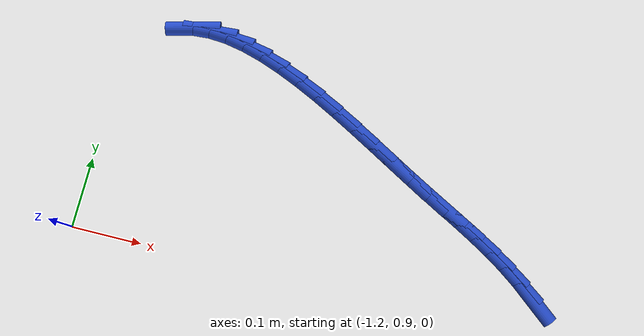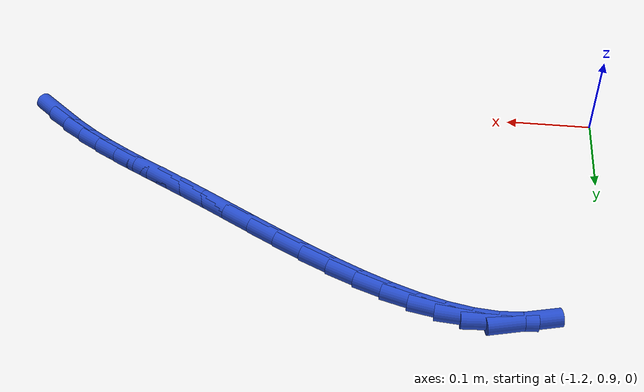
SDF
<sdf version="1.6">
 <world name="default">
  <model name="ground_plane">
   <static>1</static>
   <link name="link">
    <collision name="collision">
     <geometry><plane><normal>0 0 1</normal><size>100 100</size></plane></geometry>
     <surface><friction><ode><mu>100</mu><mu2>50</mu2></ode></friction></surface>
    </collision>
    <visual name="visual">
     <cast_shadows>0</cast_shadows>
     <geometry><plane><normal>0 0 1</normal><size>100 100</size></plane></geometry>
     <material>
      <script><uri>file://media/materials/scripts/gazebo.material</uri><name>Gazebo/WhiteGlow</name></script>
     </material>
    </visual>
   </link>
  </model>
  <model name="line">
   <link name="link_39">
    <pose>-0.5593524849204481 0.9558216433099324 0.01 0 1.57 -0.6936009312830728</pose>
    <collision name="collision">
     <geometry><cylinder><radius>0.01</radius><length>0.08</length></cylinder></geometry>
    </collision>
    <visual name="visual">
     <material>
      <script><name>Gazebo/Blue</name><uri>file://media/materials/scripts/gazebo.material</uri></script>
     </material>
     <geometry><cylinder><radius>0.01</radius><length>0.08</length></cylinder></geometry>
    </visual>
   </link>
   <link name="link_40">
    <pose>-0.5813056803094686 0.9740737053525046 0.01 0 1.57 -0.6342538687774706</pose>
    <collision name="collision">
     <geometry><cylinder><radius>0.01</radius><length>0.08</length></cylinder></geometry>
    </collision>
    <visual name="visual">
     <material>
      <script><name>Gazebo/Blue</name><uri>file://media/materials/scripts/gazebo.material</uri></script>
     </material>
     <geometry><cylinder><radius>0.01</radius><length>0.08</length></cylinder></geometry>
    </visual>
   </link>
   <link name="link_41">
    <pose>-0.6039971105438559 0.9907666628071685 0.01 0 1.57 -0.5806487105859068</pose>
    <collision name="collision">
     <geometry><cylinder><radius>0.01</radius><length>0.08</length></cylinder></geometry>
    </collision>
    <visual name="visual">
     <material>
      <script><name>Gazebo/Blue</name><uri>file://media/materials/scripts/gazebo.material</uri></script>
     </material>
     <geometry><cylinder><radius>0.01</radius><length>0.08</length></cylinder></geometry>
    </visual>
   </link>
   <link name="link_42">
    <pose>-0.62750336000404 1.0061890192864564 0.01 0 1.57 -0.5397523954169569</pose>
    <collision name="collision">
     <geometry><cylinder><radius>0.01</radius><length>0.08</length></cylinder></geometry>
    </collision>
    <visual name="visual">
     <material>
      <script><name>Gazebo/Blue</name><uri>file://media/materials/scripts/gazebo.material</uri></script>
     </material>
     <geometry><cylinder><radius>0.01</radius><length>0.08</length></cylinder></geometry>
    </visual>
   </link>
   <link name="link_43">
    <pose>-0.6518745633011798 1.0207896390268765 0.01 0 1.57 -0.5125165849322124</pose>
    <collision name="collision">
     <geometry><cylinder><radius>0.01</radius><length>0.08</length></cylinder></geometry>
    </collision>
    <visual name="visual">
     <material>
      <script><name>Gazebo/Blue</name><uri>file://media/materials/scripts/gazebo.material</uri></script>
     </material>
     <geometry><cylinder><radius>0.01</radius><length>0.08</length></cylinder></geometry>
    </visual>
   </link>
   <link name="link_44">
    <pose>-0.6771608514583765 1.0350174080187409 0.01 0 1.57 -0.49890042588356615</pose>
    <collision name="collision">
     <geometry><cylinder><radius>0.01</radius><length>0.08</length></cylinder></geometry>
    </collision>
    <visual name="visual">
     <material>
      <script><name>Gazebo/Blue</name><uri>file://media/materials/scripts/gazebo.material</uri></script>
     </material>
     <geometry><cylinder><radius>0.01</radius><length>0.08</length></cylinder></geometry>
    </visual>
   </link>
   <link name="link_45">
    <pose>-0.703412355498731 1.0493212122523616 0.01 0 1.57 -0.4980993169900236</pose>
    <collision name="collision">
     <geometry><cylinder><radius>0.01</radius><length>0.08</length></cylinder></geometry>
    </collision>
    <visual name="visual">
     <material>
      <script><name>Gazebo/Blue</name><uri>file://media/materials/scripts/gazebo.material</uri></script>
     </material>
     <geometry><cylinder><radius>0.01</radius><length>0.08</length></cylinder></geometry>
    </visual>
   </link>
   <link name="link_46">
    <pose>-0.7306792064453443 1.0641499377180512 0.01 0 1.57 -0.5082319572374002</pose>
    <collision name="collision">
     <geometry><cylinder><radius>0.01</radius><length>0.08</length></cylinder></geometry>
    </collision>
    <visual name="visual">
     <material>
      <script><name>Gazebo/Blue</name><uri>file://media/materials/scripts/gazebo.material</uri></script>
     </material>
     <geometry><cylinder><radius>0.01</radius><length>0.08</length></cylinder></geometry>
    </visual>
   </link>
   <link name="link_47">
    <pose>-0.7590039103705701 1.0799279244129343 0.01 0 1.57 -0.5183036198236411</pose>
    <collision name="collision">
     <geometry><cylinder><radius>0.01</radius><length>0.08</length></cylinder></geometry>
    </collision>
    <visual name="visual">
     <material>
      <script><name>Gazebo/Blue</name><uri>file://media/materials/scripts/gazebo.material</uri></script>
     </material>
     <geometry><cylinder><radius>0.01</radius><length>0.08</length></cylinder></geometry>
    </visual>
   </link>
   <link name="link_48">
    <pose>-0.7882892391720583 1.0966296846285235 0.01 0 1.57 -0.5203530635979943</pose>
    <collision name="collision">
     <geometry><cylinder><radius>0.01</radius><length>0.08</length></cylinder></geometry>
    </collision>
    <visual name="visual">
     <material>
      <script><name>Gazebo/Blue</name><uri>file://media/materials/scripts/gazebo.material</uri></script>
     </material>
     <geometry><cylinder><radius>0.01</radius><length>0.08</length></cylinder></geometry>
    </visual>
   </link>
   <link name="link_49">
    <pose>-0.8183155599874655 1.1138356892383254 0.01 0 1.57 -0.5147900094374656</pose>
    <collision name="collision">
     <geometry><cylinder><radius>0.01</radius><length>0.08</length></cylinder></geometry>
    </collision>
    <visual name="visual">
     <material>
      <script><name>Gazebo/Blue</name><uri>file://media/materials/scripts/gazebo.material</uri></script>
     </material>
     <geometry><cylinder><radius>0.01</radius><length>0.08</length></cylinder></geometry>
    </visual>
   </link>
   <link name="link_50">
    <pose>-0.8488590999459876 1.1311130817354016 0.01 0 1.57 -0.5017366412286963</pose>
    <collision name="collision">
     <geometry><cylinder><radius>0.01</radius><length>0.08</length></cylinder></geometry>
    </collision>
    <visual name="visual">
     <material>
      <script><name>Gazebo/Blue</name><uri>file://media/materials/scripts/gazebo.material</uri></script>
     </material>
     <geometry><cylinder><radius>0.01</radius><length>0.08</length></cylinder></geometry>
    </visual>
   </link>
   <link name="link_51">
    <pose>-0.87969608617682 1.1480290056128148 0.01 0 1.57 -0.48079533815945563</pose>
    <collision name="collision">
     <geometry><cylinder><radius>0.01</radius><length>0.08</length></cylinder></geometry>
    </collision>
    <visual name="visual">
     <material>
      <script><name>Gazebo/Blue</name><uri>file://media/materials/scripts/gazebo.material</uri></script>
     </material>
     <geometry><cylinder><radius>0.01</radius><length>0.08</length></cylinder></geometry>
    </visual>
   </link>
   <link name="link_52">
    <pose>-0.9106027458091585 1.1641506043636276 0.01 0 1.57 -0.45103398790445903</pose>
    <collision name="collision">
     <geometry><cylinder><radius>0.01</radius><length>0.08</length></cylinder></geometry>
    </collision>
    <visual name="visual">
     <material>
      <script><name>Gazebo/Blue</name><uri>file://media/materials/scripts/gazebo.material</uri></script>
     </material>
     <geometry><cylinder><radius>0.01</radius><length>0.08</length></cylinder></geometry>
    </visual>
   </link>
   <link name="link_53">
    <pose>-0.9413553059721987 1.179045021480902 0.01 0 1.57 -0.41090215143603803</pose>
    <collision name="collision">
     <geometry><cylinder><radius>0.01</radius><length>0.08</length></cylinder></geometry>
    </collision>
    <visual name="visual">
     <material>
      <script><name>Gazebo/Blue</name><uri>file://media/materials/scripts/gazebo.material</uri></script>
     </material>
     <geometry><cylinder><radius>0.01</radius><length>0.08</length></cylinder></geometry>
    </visual>
   </link>
   <link name="link_54">
    <pose>-0.9717299937951358 1.1922794004577 0.01 0 1.57 -0.35808124792651674</pose>
    <collision name="collision">
     <geometry><cylinder><radius>0.01</radius><length>0.08</length></cylinder></geometry>
    </collision>
    <visual name="visual">
     <material>
      <script><name>Gazebo/Blue</name><uri>file://media/materials/scripts/gazebo.material</uri></script>
     </material>
     <geometry><cylinder><radius>0.01</radius><length>0.08</length></cylinder></geometry>
    </visual>
   </link>
   <link name="link_55">
    <pose>-1.001503036407166 1.2034208847870846 0.01 0 1.57 -0.28928270697576575</pose>
    <collision name="collision">
     <geometry><cylinder><radius>0.01</radius><length>0.08</length></cylinder></geometry>
    </collision>
    <visual name="visual">
     <material>
      <script><name>Gazebo/Blue</name><uri>file://media/materials/scripts/gazebo.material</uri></script>
     </material>
     <geometry><cylinder><radius>0.01</radius><length>0.08</length></cylinder></geometry>
    </visual>
   </link>
   <link name="link_56">
    <pose>-1.0304506609374844 1.2120366179621174 0.01 0 1.57 -0.20006311036587493</pose>
    <collision name="collision">
     <geometry><cylinder><radius>0.01</radius><length>0.08</length></cylinder></geometry>
    </collision>
    <visual name="visual">
     <material>
      <script><name>Gazebo/Blue</name><uri>file://media/materials/scripts/gazebo.material</uri></script>
     </material>
     <geometry><cylinder><radius>0.01</radius><length>0.08</length></cylinder></geometry>
    </visual>
   </link>
   <link name="link_57">
    <pose>-1.0583490945152867 1.2176937434758608 0.01 0 1.57 -0.08488926168977587</pose>
    <collision name="collision">
     <geometry><cylinder><radius>0.01</radius><length>0.08</length></cylinder></geometry>
    </collision>
    <visual name="visual">
     <material>
      <script><name>Gazebo/Blue</name><uri>file://media/materials/scripts/gazebo.material</uri></script>
     </material>
     <geometry><cylinder><radius>0.01</radius><length>0.08</length></cylinder></geometry>
    </visual>
   </link>
   <link name="link_58">
    <pose>-1.0849745642697686 1.2199594048213767 0.01 0 1.57 0.06194761300042168</pose>
    <collision name="collision">
     <geometry><cylinder><radius>0.01</radius><length>0.08</length></cylinder></geometry>
    </collision>
    <visual name="visual">
     <material>
      <script><name>Gazebo/Blue</name><uri>file://media/materials/scripts/gazebo.material</uri></script>
     </material>
     <geometry><cylinder><radius>0.01</radius><length>0.08</length></cylinder></geometry>
    </visual>
   </link>
   <link name="link_59">
    <pose>-1.1101032973301257 1.2184007454917283 0.01 0 1.57 0.24352185874922996</pose>
    <collision name="collision">
     <geometry><cylinder><radius>0.01</radius><length>0.08</length></cylinder></geometry>
    </collision>
    <visual name="visual">
     <material>
      <script><name>Gazebo/Blue</name><uri>file://media/materials/scripts/gazebo.material</uri></script>
     </material>
     <geometry><cylinder><radius>0.01</radius><length>0.08</length></cylinder></geometry>
    </visual>
   </link>
  </model>
 </world>
</sdf>
